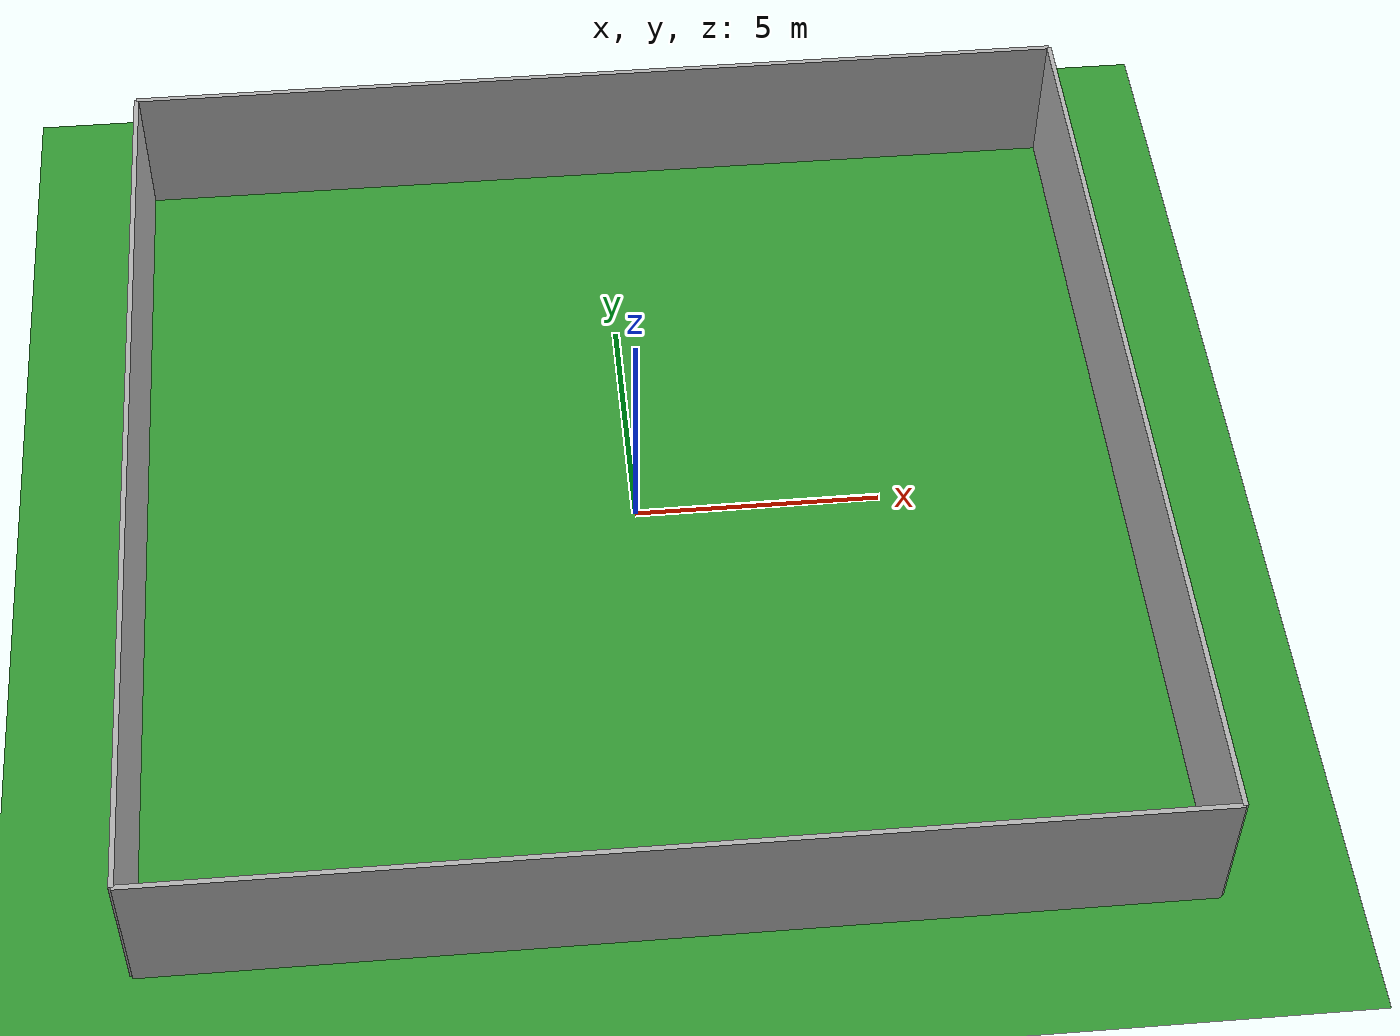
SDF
<?xml version="1.0" ?>
<sdf version="1.7">
  <world name="box_arena">
    <!-- gravity -->
    <gravity>0 0 -9.8</gravity>

    <!-- simple directional light (no model://sun) -->
    <light name="sun" type="directional">
      <cast_shadows>true</cast_shadows>
      <pose>0 0 10 0 0 0</pose>
      <diffuse>1 1 1 1</diffuse>
      <specular>0.1 0.1 0.1 1</specular>
      <direction>-0.5 -0.5 -1</direction>
    </light>

    <!-- ground plane -->
    <model name="ground">
      <static>true</static>
      <link name="link">
        <pose>0 0 0 0 0 0</pose>
        <collision name="collision">
          <geometry>
            <plane>
              <normal>0 0 1</normal>
              <size>30 30</size>
            </plane>
          </geometry>
        </collision>
        <visual name="visual">
          <geometry>
            <plane>
              <normal>0 0 1</normal>
              <size>30 30</size>
            </plane>
          </geometry>
          <material>
            <ambient>0.2 0.5 0.2 1</ambient>
            <diffuse>0.2 0.6 0.2 1</diffuse>
          </material>
        </visual>
      </link>
    </model>

    <!-- walls around origin -->
    <!-- +X wall -->
    <model name="wall_pos_x">
      <static>true</static>
      <link name="link">
        <pose>10 0 1.5 0 0 0</pose>
        <collision name="collision">
          <geometry>
            <box>
              <size>0.1 20 3</size>
            </box>
          </geometry>
        </collision>
        <visual name="visual">
          <geometry>
            <box>
              <size>0.1 20 3</size>
            </box>
          </geometry>
          <material>
            <ambient>0.7 0.7 0.7 1</ambient>
            <diffuse>0.7 0.7 0.7 1</diffuse>
          </material>
        </visual>
      </link>
    </model>

    <!-- -X wall -->
    <model name="wall_neg_x">
      <static>true</static>
      <link name="link">
        <pose>-10 0 1.5 0 0 0</pose>
        <collision name="collision">
          <geometry>
            <box>
              <size>0.1 20 3</size>
            </box>
          </geometry>
        </collision>
        <visual name="visual">
          <geometry>
            <box>
              <size>0.1 20 3</size>
            </box>
          </geometry>
          <material>
            <ambient>0.7 0.7 0.7 1</ambient>
            <diffuse>0.7 0.7 0.7 1</diffuse>
          </material>
        </visual>
      </link>
    </model>

    <!-- +Y wall -->
    <model name="wall_pos_y">
      <static>true</static>
      <link name="link">
        <pose>0 10 1.5 0 0 0</pose>
        <collision name="collision">
          <geometry>
            <box>
              <size>20 0.1 3</size>
            </box>
          </geometry>
        </collision>
        <visual name="visual">
          <geometry>
            <box>
              <size>20 0.1 3</size>
            </box>
          </geometry>
          <material>
            <ambient>0.7 0.7 0.7 1</ambient>
            <diffuse>0.7 0.7 0.7 1</diffuse>
          </material>
        </visual>
      </link>
    </model>

    <!-- -Y wall -->
    <model name="wall_neg_y">
      <static>true</static>
      <link name="link">
        <pose>0 -10 1.5 0 0 0</pose>
        <collision name="collision">
          <geometry>
            <box>
              <size>20 0.1 3</size>
            </box>
          </geometry>
        </collision>
        <visual name="visual">
          <geometry>
            <box>
              <size>20 0.1 3</size>
            </box>
          </geometry>
          <material>
            <ambient>0.7 0.7 0.7 1</ambient>
            <diffuse>0.7 0.7 0.7 1</diffuse>
          </material>
        </visual>
      </link>
    </model>

  </world>
</sdf>
